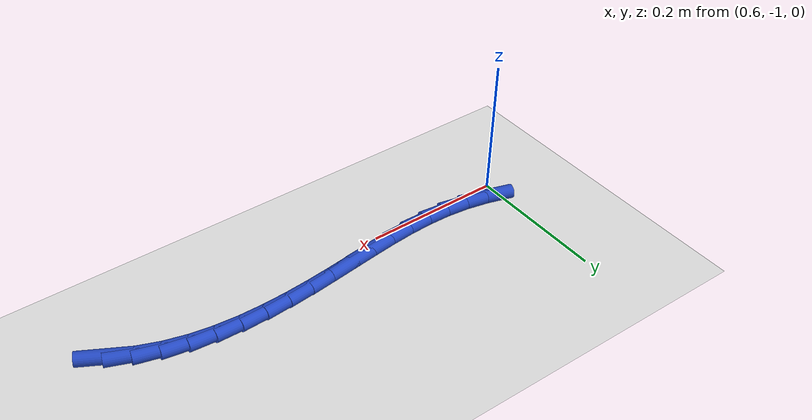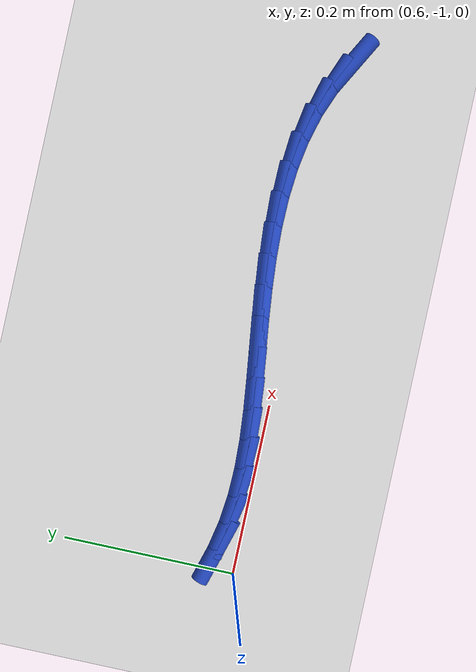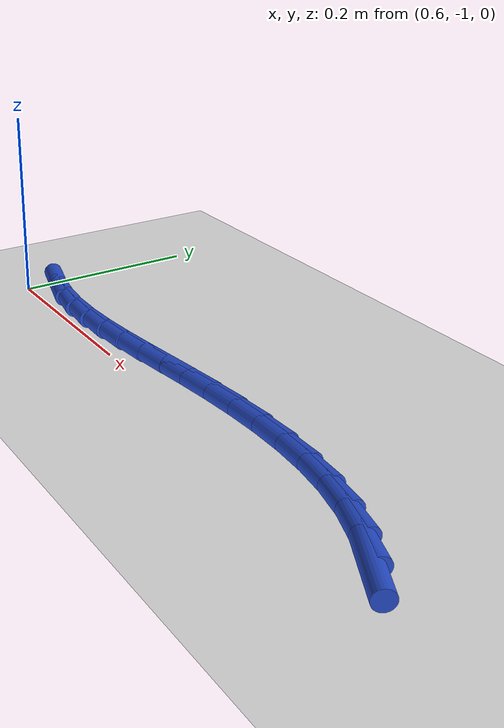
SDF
<sdf version="1.6">
 <world name="default">
  <model name="ground_plane">
   <static>1</static>
   <link name="link">
    <collision name="collision">
     <geometry><plane><normal>0 0 1</normal><size>100 100</size></plane></geometry>
     <surface><friction><ode><mu>100</mu><mu2>50</mu2></ode></friction></surface>
    </collision>
    <visual name="visual">
     <cast_shadows>0</cast_shadows>
     <geometry><plane><normal>0 0 1</normal><size>100 100</size></plane></geometry>
     <material>
      <script><uri>file://media/materials/scripts/gazebo.material</uri><name>Gazebo/WhiteGlow</name></script>
     </material>
    </visual>
   </link>
  </model>
  <model name="line">
   <link name="link_158">
    <pose>1.202395850121438 -1.0064752060521653 0.01 0 1.57 -0.5006021290662073</pose>
    <collision name="collision">
     <geometry><cylinder><radius>0.01</radius><length>0.08</length></cylinder></geometry>
    </collision>
    <visual name="visual">
     <material>
      <script><name>Gazebo/Blue</name><uri>file://media/materials/scripts/gazebo.material</uri></script>
     </material>
     <geometry><cylinder><radius>0.01</radius><length>0.08</length></cylinder></geometry>
    </visual>
   </link>
   <link name="link_159">
    <pose>1.172430217764039 -0.9900814706736537 0.01 0 1.57 -0.3736602324424778</pose>
    <collision name="collision">
     <geometry><cylinder><radius>0.01</radius><length>0.08</length></cylinder></geometry>
    </collision>
    <visual name="visual">
     <material>
      <script><name>Gazebo/Blue</name><uri>file://media/materials/scripts/gazebo.material</uri></script>
     </material>
     <geometry><cylinder><radius>0.01</radius><length>0.08</length></cylinder></geometry>
    </visual>
   </link>
   <link name="link_160">
    <pose>1.1408163444974895 -0.9776863020757319 0.01 0 1.57 -0.26109570629500894</pose>
    <collision name="collision">
     <geometry><cylinder><radius>0.01</radius><length>0.08</length></cylinder></geometry>
    </collision>
    <visual name="visual">
     <material>
      <script><name>Gazebo/Blue</name><uri>file://media/materials/scripts/gazebo.material</uri></script>
     </material>
     <geometry><cylinder><radius>0.01</radius><length>0.08</length></cylinder></geometry>
    </visual>
   </link>
   <link name="link_161">
    <pose>1.1078193068576578 -0.9688696542834999 0.01 0 1.57 -0.1643590956593348</pose>
    <collision name="collision">
     <geometry><cylinder><radius>0.01</radius><length>0.08</length></cylinder></geometry>
    </collision>
    <visual name="visual">
     <material>
      <script><name>Gazebo/Blue</name><uri>file://media/materials/scripts/gazebo.material</uri></script>
     </material>
     <geometry><cylinder><radius>0.01</radius><length>0.08</length></cylinder></geometry>
    </visual>
   </link>
   <link name="link_162">
    <pose>1.0737041813804133 -0.9632114813220578 0.01 0 1.57 -0.08330403993713828</pose>
    <collision name="collision">
     <geometry><cylinder><radius>0.01</radius><length>0.08</length></cylinder></geometry>
    </collision>
    <visual name="visual">
     <material>
      <script><name>Gazebo/Blue</name><uri>file://media/materials/scripts/gazebo.material</uri></script>
     </material>
     <geometry><cylinder><radius>0.01</radius><length>0.08</length></cylinder></geometry>
    </visual>
   </link>
   <link name="link_163">
    <pose>1.0387360446016258 -0.960291737216506 0.01 0 1.57 -0.01691142660906099</pose>
    <collision name="collision">
     <geometry><cylinder><radius>0.01</radius><length>0.08</length></cylinder></geometry>
    </collision>
    <visual name="visual">
     <material>
      <script><name>Gazebo/Blue</name><uri>file://media/materials/scripts/gazebo.material</uri></script>
     </material>
     <geometry><cylinder><radius>0.01</radius><length>0.08</length></cylinder></geometry>
    </visual>
   </link>
   <link name="link_164">
    <pose>1.0031799730571618 -0.9596903759919437 0.01 0 1.57 0.03613293934228999</pose>
    <collision name="collision">
     <geometry><cylinder><radius>0.01</radius><length>0.08</length></cylinder></geometry>
    </collision>
    <visual name="visual">
     <material>
      <script><name>Gazebo/Blue</name><uri>file://media/materials/scripts/gazebo.material</uri></script>
     </material>
     <geometry><cylinder><radius>0.01</radius><length>0.08</length></cylinder></geometry>
    </visual>
   </link>
   <link name="link_165">
    <pose>0.967301043282893 -0.9609873516734713 0.01 0 1.57 0.07707352704805936</pose>
    <collision name="collision">
     <geometry><cylinder><radius>0.01</radius><length>0.08</length></cylinder></geometry>
    </collision>
    <visual name="visual">
     <material>
      <script><name>Gazebo/Blue</name><uri>file://media/materials/scripts/gazebo.material</uri></script>
     </material>
     <geometry><cylinder><radius>0.01</radius><length>0.08</length></cylinder></geometry>
    </visual>
   </link>
   <link name="link_166">
    <pose>0.931364331814688 -0.9637626182861891 0.01 0 1.57 0.10687334329093387</pose>
    <collision name="collision">
     <geometry><cylinder><radius>0.01</radius><length>0.08</length></cylinder></geometry>
    </collision>
    <visual name="visual">
     <material>
      <script><name>Gazebo/Blue</name><uri>file://media/materials/scripts/gazebo.material</uri></script>
     </material>
     <geometry><cylinder><radius>0.01</radius><length>0.08</length></cylinder></geometry>
    </visual>
   </link>
   <link name="link_167">
    <pose>0.8956343324817814 -0.9675958080135812 0.01 0 1.57 0.12468853277305807</pose>
    <collision name="collision">
     <geometry><cylinder><radius>0.01</radius><length>0.08</length></cylinder></geometry>
    </collision>
    <visual name="visual">
     <material>
      <script><name>Gazebo/Blue</name><uri>file://media/materials/scripts/gazebo.material</uri></script>
     </material>
     <geometry><cylinder><radius>0.01</radius><length>0.08</length></cylinder></geometry>
    </visual>
   </link>
   <link name="link_168">
    <pose>0.8602996140176177 -0.9720246179485451 0.01 0 1.57 0.12763617663602198</pose>
    <collision name="collision">
     <geometry><cylinder><radius>0.01</radius><length>0.08</length></cylinder></geometry>
    </collision>
    <visual name="visual">
     <material>
      <script><name>Gazebo/Blue</name><uri>file://media/materials/scripts/gazebo.material</uri></script>
     </material>
     <geometry><cylinder><radius>0.01</radius><length>0.08</length></cylinder></geometry>
    </visual>
   </link>
   <link name="link_169">
    <pose>0.8253982797395663 -0.9765036398445949 0.01 0 1.57 0.11485720196628284</pose>
    <collision name="collision">
     <geometry><cylinder><radius>0.01</radius><length>0.08</length></cylinder></geometry>
    </collision>
    <visual name="visual">
     <material>
      <script><name>Gazebo/Blue</name><uri>file://media/materials/scripts/gazebo.material</uri></script>
     </material>
     <geometry><cylinder><radius>0.01</radius><length>0.08</length></cylinder></geometry>
    </visual>
   </link>
   <link name="link_170">
    <pose>0.7909507181726061 -0.9804776811880557 0.01 0 1.57 0.08555971689689584</pose>
    <collision name="collision">
     <geometry><cylinder><radius>0.01</radius><length>0.08</length></cylinder></geometry>
    </collision>
    <visual name="visual">
     <material>
      <script><name>Gazebo/Blue</name><uri>file://media/materials/scripts/gazebo.material</uri></script>
     </material>
     <geometry><cylinder><radius>0.01</radius><length>0.08</length></cylinder></geometry>
    </visual>
   </link>
   <link name="link_171">
    <pose>0.7569773178417171 -0.9833915494652516 0.01 0 1.57 0.03876632962143972</pose>
    <collision name="collision">
     <geometry><cylinder><radius>0.01</radius><length>0.08</length></cylinder></geometry>
    </collision>
    <visual name="visual">
     <material>
      <script><name>Gazebo/Blue</name><uri>file://media/materials/scripts/gazebo.material</uri></script>
     </material>
     <geometry><cylinder><radius>0.01</radius><length>0.08</length></cylinder></geometry>
    </visual>
   </link>
   <link name="link_172">
    <pose>0.7234984672718784 -0.9846900521625075 0.01 0 1.57 -0.0264486822919172</pose>
    <collision name="collision">
     <geometry><cylinder><radius>0.01</radius><length>0.08</length></cylinder></geometry>
    </collision>
    <visual name="visual">
     <material>
      <script><name>Gazebo/Blue</name><uri>file://media/materials/scripts/gazebo.material</uri></script>
     </material>
     <geometry><cylinder><radius>0.01</radius><length>0.08</length></cylinder></geometry>
    </visual>
   </link>
   <link name="link_173">
    <pose>0.690534554988069 -0.9838179967661478 0.01 0 1.57 -0.10989920116834712</pose>
    <collision name="collision">
     <geometry><cylinder><radius>0.01</radius><length>0.08</length></cylinder></geometry>
    </collision>
    <visual name="visual">
     <material>
      <script><name>Gazebo/Blue</name><uri>file://media/materials/scripts/gazebo.material</uri></script>
     </material>
     <geometry><cylinder><radius>0.01</radius><length>0.08</length></cylinder></geometry>
    </visual>
   </link>
   <link name="link_174">
    <pose>0.6581058583504605 -0.9802396912372264 0.01 0 1.57 -0.1998215730132324</pose>
    <collision name="collision">
     <geometry><cylinder><radius>0.01</radius><length>0.08</length></cylinder></geometry>
    </collision>
    <visual name="visual">
     <material>
      <script><name>Gazebo/Blue</name><uri>file://media/materials/scripts/gazebo.material</uri></script>
     </material>
     <geometry><cylinder><radius>0.01</radius><length>0.08</length></cylinder></geometry>
    </visual>
   </link>
   <link name="link_175">
    <pose>0.6262305755382078 -0.9737841724265109 0.01 0 1.57 -0.28524877879809657</pose>
    <collision name="collision">
     <geometry><cylinder><radius>0.01</radius><length>0.08</length></cylinder></geometry>
    </collision>
    <visual name="visual">
     <material>
      <script><name>Gazebo/Blue</name><uri>file://media/materials/scripts/gazebo.material</uri></script>
     </material>
     <geometry><cylinder><radius>0.01</radius><length>0.08</length></cylinder></geometry>
    </visual>
   </link>
  </model>
 </world>
</sdf>
